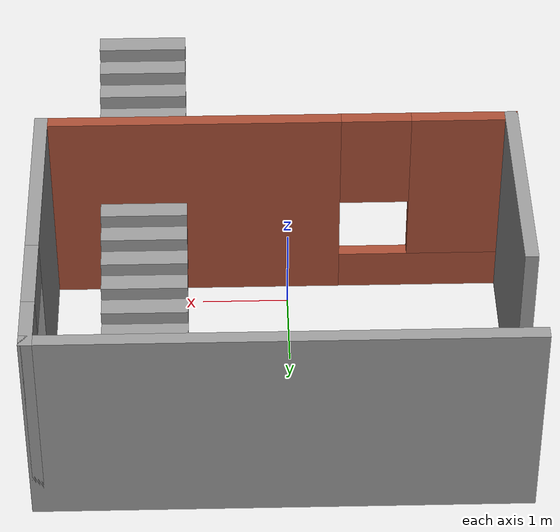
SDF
<?xml version='1.0'?>
<sdf version='1.7'>
  <model name='demo02.world'>
    <pose>0.121248 0.721326 0 0 -0 0</pose>
    <link name='Stairs_0'>
      <visual name='Stairs_0_Visual_0'>
        <pose>1.545 0.760833 0.083333 0 -0 0</pose>
        <geometry>
          <box>
            <size>1 0.233333 0.166667</size>
          </box>
        </geometry>
        <material>
          <script>
            <uri>file://media/materials/scripts/gazebo.material</uri>
            <name>Gazebo/Grey</name>
          </script>
          <ambient>1 1 1 1</ambient>
        </material>
        <meta>
          <layer>0</layer>
        </meta>
      </visual>
      <collision name='Stairs_0_Collision_0'>
        <geometry>
          <box>
            <size>1 0.233333 0.166667</size>
          </box>
        </geometry>
        <pose>1.545 0.760833 0.083333 0 -0 0</pose>
      </collision>
      <visual name='Stairs_0_Visual_1'>
        <pose>1.545 0.5275 0.25 0 -0 0</pose>
        <geometry>
          <box>
            <size>1 0.233333 0.166667</size>
          </box>
        </geometry>
        <material>
          <script>
            <uri>file://media/materials/scripts/gazebo.material</uri>
            <name>Gazebo/Grey</name>
          </script>
          <ambient>1 1 1 1</ambient>
        </material>
        <meta>
          <layer>0</layer>
        </meta>
      </visual>
      <collision name='Stairs_0_Collision_1'>
        <geometry>
          <box>
            <size>1 0.233333 0.166667</size>
          </box>
        </geometry>
        <pose>1.545 0.5275 0.25 0 -0 0</pose>
      </collision>
      <visual name='Stairs_0_Visual_2'>
        <pose>1.545 0.294167 0.416667 0 -0 0</pose>
        <geometry>
          <box>
            <size>1 0.233333 0.166667</size>
          </box>
        </geometry>
        <material>
          <script>
            <uri>file://media/materials/scripts/gazebo.material</uri>
            <name>Gazebo/Grey</name>
          </script>
          <ambient>1 1 1 1</ambient>
        </material>
        <meta>
          <layer>0</layer>
        </meta>
      </visual>
      <collision name='Stairs_0_Collision_2'>
        <geometry>
          <box>
            <size>1 0.233333 0.166667</size>
          </box>
        </geometry>
        <pose>1.545 0.294167 0.416667 0 -0 0</pose>
      </collision>
      <visual name='Stairs_0_Visual_3'>
        <pose>1.545 0.060833 0.583333 0 -0 0</pose>
        <geometry>
          <box>
            <size>1 0.233333 0.166667</size>
          </box>
        </geometry>
        <material>
          <script>
            <uri>file://media/materials/scripts/gazebo.material</uri>
            <name>Gazebo/Grey</name>
          </script>
          <ambient>1 1 1 1</ambient>
        </material>
        <meta>
          <layer>0</layer>
        </meta>
      </visual>
      <collision name='Stairs_0_Collision_3'>
        <geometry>
          <box>
            <size>1 0.233333 0.166667</size>
          </box>
        </geometry>
        <pose>1.545 0.060833 0.583333 0 -0 0</pose>
      </collision>
      <visual name='Stairs_0_Visual_4'>
        <pose>1.545 -0.1725 0.75 0 -0 0</pose>
        <geometry>
          <box>
            <size>1 0.233333 0.166667</size>
          </box>
        </geometry>
        <material>
          <script>
            <uri>file://media/materials/scripts/gazebo.material</uri>
            <name>Gazebo/Grey</name>
          </script>
          <ambient>1 1 1 1</ambient>
        </material>
        <meta>
          <layer>0</layer>
        </meta>
      </visual>
      <collision name='Stairs_0_Collision_4'>
        <geometry>
          <box>
            <size>1 0.233333 0.166667</size>
          </box>
        </geometry>
        <pose>1.545 -0.1725 0.75 0 -0 0</pose>
      </collision>
      <visual name='Stairs_0_Visual_5'>
        <pose>1.545 -0.405833 0.916667 0 -0 0</pose>
        <geometry>
          <box>
            <size>1 0.233333 0.166667</size>
          </box>
        </geometry>
        <material>
          <script>
            <uri>file://media/materials/scripts/gazebo.material</uri>
            <name>Gazebo/Grey</name>
          </script>
          <ambient>1 1 1 1</ambient>
        </material>
        <meta>
          <layer>0</layer>
        </meta>
      </visual>
      <collision name='Stairs_0_Collision_5'>
        <geometry>
          <box>
            <size>1 0.233333 0.166667</size>
          </box>
        </geometry>
        <pose>1.545 -0.405833 0.916667 0 -0 0</pose>
      </collision>
      <visual name='Stairs_0_Visual_6'>
        <pose>1.545 -0.639167 1.08333 0 -0 0</pose>
        <geometry>
          <box>
            <size>1 0.233333 0.166667</size>
          </box>
        </geometry>
        <material>
          <script>
            <uri>file://media/materials/scripts/gazebo.material</uri>
            <name>Gazebo/Grey</name>
          </script>
          <ambient>1 1 1 1</ambient>
        </material>
        <meta>
          <layer>0</layer>
        </meta>
      </visual>
      <collision name='Stairs_0_Collision_6'>
        <geometry>
          <box>
            <size>1 0.233333 0.166667</size>
          </box>
        </geometry>
        <pose>1.545 -0.639167 1.08333 0 -0 0</pose>
      </collision>
      <visual name='Stairs_0_Visual_7'>
        <pose>1.545 -0.8725 1.25 0 -0 0</pose>
        <geometry>
          <box>
            <size>1 0.233333 0.166667</size>
          </box>
        </geometry>
        <material>
          <script>
            <uri>file://media/materials/scripts/gazebo.material</uri>
            <name>Gazebo/Grey</name>
          </script>
          <ambient>1 1 1 1</ambient>
        </material>
        <meta>
          <layer>0</layer>
        </meta>
      </visual>
      <collision name='Stairs_0_Collision_7'>
        <geometry>
          <box>
            <size>1 0.233333 0.166667</size>
          </box>
        </geometry>
        <pose>1.545 -0.8725 1.25 0 -0 0</pose>
      </collision>
      <visual name='Stairs_0_Visual_8'>
        <pose>1.545 -1.10583 1.41667 0 -0 0</pose>
        <geometry>
          <box>
            <size>1 0.233333 0.166667</size>
          </box>
        </geometry>
        <material>
          <script>
            <uri>file://media/materials/scripts/gazebo.material</uri>
            <name>Gazebo/Grey</name>
          </script>
          <ambient>1 1 1 1</ambient>
        </material>
        <meta>
          <layer>0</layer>
        </meta>
      </visual>
      <collision name='Stairs_0_Collision_8'>
        <geometry>
          <box>
            <size>1 0.233333 0.166667</size>
          </box>
        </geometry>
        <pose>1.545 -1.10583 1.41667 0 -0 0</pose>
      </collision>
      <visual name='Stairs_0_Visual_9'>
        <pose>1.545 -1.33917 1.58333 0 -0 0</pose>
        <geometry>
          <box>
            <size>1 0.233333 0.166667</size>
          </box>
        </geometry>
        <material>
          <script>
            <uri>file://media/materials/scripts/gazebo.material</uri>
            <name>Gazebo/Grey</name>
          </script>
          <ambient>1 1 1 1</ambient>
        </material>
        <meta>
          <layer>0</layer>
        </meta>
      </visual>
      <collision name='Stairs_0_Collision_9'>
        <geometry>
          <box>
            <size>1 0.233333 0.166667</size>
          </box>
        </geometry>
        <pose>1.545 -1.33917 1.58333 0 -0 0</pose>
      </collision>
      <visual name='Stairs_0_Visual_10'>
        <pose>1.545 -1.5725 1.75 0 -0 0</pose>
        <geometry>
          <box>
            <size>1 0.233333 0.166667</size>
          </box>
        </geometry>
        <material>
          <script>
            <uri>file://media/materials/scripts/gazebo.material</uri>
            <name>Gazebo/Grey</name>
          </script>
          <ambient>1 1 1 1</ambient>
        </material>
        <meta>
          <layer>0</layer>
        </meta>
      </visual>
      <collision name='Stairs_0_Collision_10'>
        <geometry>
          <box>
            <size>1 0.233333 0.166667</size>
          </box>
        </geometry>
        <pose>1.545 -1.5725 1.75 0 -0 0</pose>
      </collision>
      <visual name='Stairs_0_Visual_11'>
        <pose>1.545 -1.80583 1.91667 0 -0 0</pose>
        <geometry>
          <box>
            <size>1 0.233333 0.166667</size>
          </box>
        </geometry>
        <material>
          <script>
            <uri>file://media/materials/scripts/gazebo.material</uri>
            <name>Gazebo/Grey</name>
          </script>
          <ambient>1 1 1 1</ambient>
        </material>
        <meta>
          <layer>0</layer>
        </meta>
      </visual>
      <collision name='Stairs_0_Collision_11'>
        <geometry>
          <box>
            <size>1 0.233333 0.166667</size>
          </box>
        </geometry>
        <pose>1.545 -1.80583 1.91667 0 -0 0</pose>
      </collision>
      <visual name='Stairs_0_Visual_12'>
        <pose>1.545 -2.03917 2.08333 0 -0 0</pose>
        <geometry>
          <box>
            <size>1 0.233333 0.166667</size>
          </box>
        </geometry>
        <material>
          <script>
            <uri>file://media/materials/scripts/gazebo.material</uri>
            <name>Gazebo/Grey</name>
          </script>
          <ambient>1 1 1 1</ambient>
        </material>
        <meta>
          <layer>0</layer>
        </meta>
      </visual>
      <collision name='Stairs_0_Collision_12'>
        <geometry>
          <box>
            <size>1 0.233333 0.166667</size>
          </box>
        </geometry>
        <pose>1.545 -2.03917 2.08333 0 -0 0</pose>
      </collision>
      <visual name='Stairs_0_Visual_13'>
        <pose>1.545 -2.2725 2.25 0 -0 0</pose>
        <geometry>
          <box>
            <size>1 0.233333 0.166667</size>
          </box>
        </geometry>
        <material>
          <script>
            <uri>file://media/materials/scripts/gazebo.material</uri>
            <name>Gazebo/Grey</name>
          </script>
          <ambient>1 1 1 1</ambient>
        </material>
        <meta>
          <layer>0</layer>
        </meta>
      </visual>
      <collision name='Stairs_0_Collision_13'>
        <geometry>
          <box>
            <size>1 0.233333 0.166667</size>
          </box>
        </geometry>
        <pose>1.545 -2.2725 2.25 0 -0 0</pose>
      </collision>
      <visual name='Stairs_0_Visual_14'>
        <pose>1.545 -2.50583 2.41667 0 -0 0</pose>
        <geometry>
          <box>
            <size>1 0.233333 0.166667</size>
          </box>
        </geometry>
        <material>
          <script>
            <uri>file://media/materials/scripts/gazebo.material</uri>
            <name>Gazebo/Grey</name>
          </script>
          <ambient>1 1 1 1</ambient>
        </material>
        <meta>
          <layer>0</layer>
        </meta>
      </visual>
      <collision name='Stairs_0_Collision_14'>
        <geometry>
          <box>
            <size>1 0.233333 0.166667</size>
          </box>
        </geometry>
        <pose>1.545 -2.50583 2.41667 0 -0 0</pose>
      </collision>
    </link>
    <link name='Wall_3'>
      <collision name='Wall_3_Collision'>
        <geometry>
          <box>
            <size>5.5 0.15 2.5</size>
          </box>
        </geometry>
        <pose>0 0 1.25 0 -0 0</pose>
      </collision>
      <visual name='Wall_3_Visual'>
        <pose>0 0 1.25 0 -0 0</pose>
        <geometry>
          <box>
            <size>5.5 0.15 2.5</size>
          </box>
        </geometry>
        <material>
          <script>
            <uri>file://media/materials/scripts/gazebo.material</uri>
            <name>Gazebo/Grey</name>
          </script>
          <ambient>1 1 1 1</ambient>
        </material>
        <meta>
          <layer>0</layer>
        </meta>
      </visual>
      <pose>-0 2.5475 0 0 -0 0</pose>
    </link>
    <link name='Wall_4'>
      <pose>2.675 0.7475 0 0 -0 -1.5708</pose>
      <visual name='Wall_4_Visual_0'>
        <pose>-1.5425 0 1.25 0 -0 0</pose>
        <geometry>
          <box>
            <size>0.665 0.15 2.5</size>
          </box>
        </geometry>
        <material>
          <script>
            <uri>file://media/materials/scripts/gazebo.material</uri>
            <name>Gazebo/Grey</name>
          </script>
          <ambient>1 1 1 1</ambient>
        </material>
        <meta>
          <layer>0</layer>
        </meta>
      </visual>
      <collision name='Wall_4_Collision_0'>
        <geometry>
          <box>
            <size>0.665 0.15 2.5</size>
          </box>
        </geometry>
        <pose>-1.5425 0 1.25 0 -0 0</pose>
      </collision>
      <visual name='Wall_4_Visual_1'>
        <pose>0.7825 0 1.25 0 -0 0</pose>
        <geometry>
          <box>
            <size>2.185 0.15 2.5</size>
          </box>
        </geometry>
        <material>
          <script>
            <uri>file://media/materials/scripts/gazebo.material</uri>
            <name>Gazebo/Grey</name>
          </script>
          <ambient>1 1 1 1</ambient>
        </material>
        <meta>
          <layer>0</layer>
        </meta>
      </visual>
      <collision name='Wall_4_Collision_1'>
        <geometry>
          <box>
            <size>2.185 0.15 2.5</size>
          </box>
        </geometry>
        <pose>0.7825 0 1.25 0 -0 0</pose>
      </collision>
      <visual name='Wall_4_Visual_2'>
        <pose>-0.76 0 2.25 0 -0 0</pose>
        <geometry>
          <box>
            <size>0.9 0.15 0.5</size>
          </box>
        </geometry>
        <material>
          <script>
            <uri>file://media/materials/scripts/gazebo.material</uri>
            <name>Gazebo/Grey</name>
          </script>
          <ambient>1 1 1 1</ambient>
        </material>
        <meta>
          <layer>0</layer>
        </meta>
      </visual>
      <collision name='Wall_4_Collision_2'>
        <geometry>
          <box>
            <size>0.9 0.15 0.5</size>
          </box>
        </geometry>
        <pose>-0.76 0 2.25 0 -0 0</pose>
      </collision>
    </link>
    <link name='Wall_5'>
      <pose>-0 -1.0525 0 0 -0 3.14159</pose>
      <visual name='Wall_5_Visual_0'>
        <pose>-1.0075 0 1.25 0 -0 0</pose>
        <geometry>
          <box>
            <size>3.485 0.15 2.5</size>
          </box>
        </geometry>
        <material>
          <script>
            <uri>file://media/materials/scripts/gazebo.material</uri>
            <name>Gazebo/Bricks</name>
          </script>
          <ambient>1 1 1 1</ambient>
        </material>
        <meta>
          <layer>0</layer>
        </meta>
      </visual>
      <collision name='Wall_5_Collision_0'>
        <geometry>
          <box>
            <size>3.485 0.15 2.5</size>
          </box>
        </geometry>
        <pose>-1.0075 0 1.25 0 -0 0</pose>
      </collision>
      <visual name='Wall_5_Visual_1'>
        <pose>1.7425 0 0.25 0 -0 0</pose>
        <geometry>
          <box>
            <size>2.015 0.15 0.5</size>
          </box>
        </geometry>
        <material>
          <script>
            <uri>file://media/materials/scripts/gazebo.material</uri>
            <name>Gazebo/Bricks</name>
          </script>
          <ambient>1 1 1 1</ambient>
        </material>
        <meta>
          <layer>0</layer>
        </meta>
      </visual>
      <collision name='Wall_5_Collision_1'>
        <geometry>
          <box>
            <size>2.015 0.15 0.5</size>
          </box>
        </geometry>
        <pose>1.7425 0 0.25 0 -0 0</pose>
      </collision>
      <visual name='Wall_5_Visual_2'>
        <pose>2.1425 0 1.5 0 -0 0</pose>
        <geometry>
          <box>
            <size>1.215 0.15 2</size>
          </box>
        </geometry>
        <material>
          <script>
            <uri>file://media/materials/scripts/gazebo.material</uri>
            <name>Gazebo/Bricks</name>
          </script>
          <ambient>1 1 1 1</ambient>
        </material>
        <meta>
          <layer>0</layer>
        </meta>
      </visual>
      <collision name='Wall_5_Collision_2'>
        <geometry>
          <box>
            <size>1.215 0.15 2</size>
          </box>
        </geometry>
        <pose>2.1425 0 1.5 0 -0 0</pose>
      </collision>
      <visual name='Wall_5_Visual_3'>
        <pose>1.135 0 1.9 0 -0 0</pose>
        <geometry>
          <box>
            <size>0.8 0.15 1.2</size>
          </box>
        </geometry>
        <material>
          <script>
            <uri>file://media/materials/scripts/gazebo.material</uri>
            <name>Gazebo/Bricks</name>
          </script>
          <ambient>1 1 1 1</ambient>
        </material>
        <meta>
          <layer>0</layer>
        </meta>
      </visual>
      <collision name='Wall_5_Collision_3'>
        <geometry>
          <box>
            <size>0.8 0.15 1.2</size>
          </box>
        </geometry>
        <pose>1.135 0 1.9 0 -0 0</pose>
      </collision>
    </link>
    <link name='Wall_6'>
      <collision name='Wall_6_Collision'>
        <geometry>
          <box>
            <size>2.5 0.15 2.5</size>
          </box>
        </geometry>
        <pose>0 0 1.25 0 -0 0</pose>
      </collision>
      <visual name='Wall_6_Visual'>
        <pose>0 0 1.25 0 -0 0</pose>
        <geometry>
          <box>
            <size>2.5 0.15 2.5</size>
          </box>
        </geometry>
        <material>
          <script>
            <uri>file://media/materials/scripts/gazebo.material</uri>
            <name>Gazebo/Grey</name>
          </script>
          <ambient>1 1 1 1</ambient>
        </material>
        <meta>
          <layer>0</layer>
        </meta>
      </visual>
      <pose>-2.675 0.1225 0 0 -0 1.5708</pose>
    </link>
    <static>1</static>
  </model>
</sdf>
